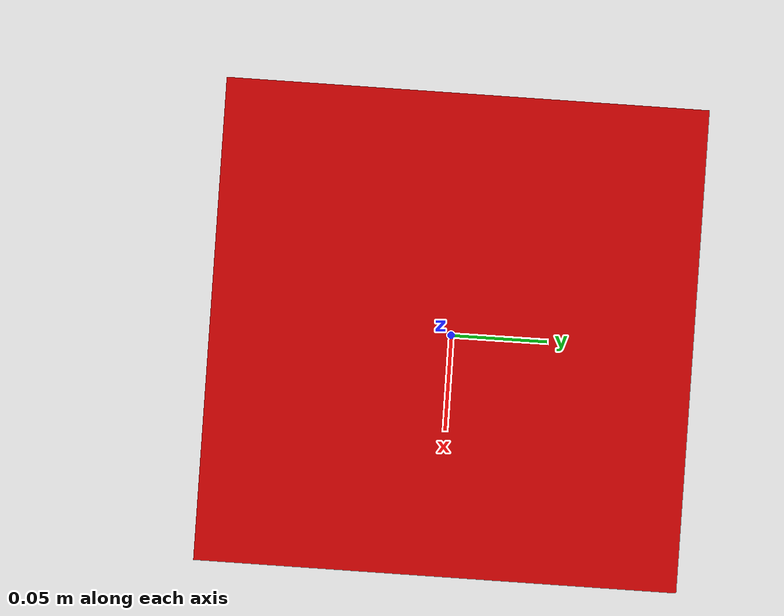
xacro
<?xml version="1.0"?>
<robot name="box_robot" xmlns:xacro="http://ros.org/wiki/xacro">

    <!-- Properties -->
    <!--All units in m-kg-s-radians unit system -->
    <xacro:property name="M_PI" value="3.1415926535897931"/>

    <!-- Colors -->
    <material name="Black">
        <color rgba="0.0 0.0 0.0 1.0"/>
    </material>
    <material name="Red">
        <color rgba="0.8 0.0 0.0 1.0"/>
    </material>
    <material name="White">
        <color rgba="1.0 1.0 1.0 1.0"/>
    </material>
    <material name="Blue">
        <color rgba="0.0 0.0 0.8 1.0"/>
    </material>

    <!-- Box shape -->
    <xacro:property name="box_x"     value="0.2"/>
    <xacro:property name="box_y"     value="0.2"/>
    <xacro:property name="box_z"     value="0.2"/>
    <xacro:property name="box_color" value="Red"/>

    <!-- IMcoder -->
    <!-- Shape -->
    <xacro:property name="imcoder_height" value="0.00545"/>
    <xacro:property name="imcoder_radius" value="0.02"/>
    <xacro:property name="imcoder_color"  value="White"/>

    <!-- Pose (related to center of the box) -->
    <xacro:property name="imcoder_x"     value="0.0"/>
    <xacro:property name="imcoder_y"     value="0.0"/>
    <xacro:property name="imcoder_z"     value="0.0"/>
    <xacro:property name="imcoder_roll"  value="0.0"/>
    <xacro:property name="imcoder_pitch" value="0.0"/>
    <xacro:property name="imcoder_yaw"   value="0.0"/>

    <!-- Data parameters -->
    <xacro:property name="gaussian_noise"     value="0.0"  />
    <!-- Update rates from plugin sensor. -->
    <!-- Note that must be always [sensor_update_rate >= plugin_update_rate] -->
    <xacro:property name="sensor_update_rate" value="100.0"/>
    <xacro:property name="plugin_update_rate" value="10.0"/>

    <!-- Robot description -->
    <!-- Root link -->
    <link name="box_footprint">
        <visual>
            <origin xyz="0 0 0" rpy="0 0 0"/>
            <geometry>
                <box size="0.0001 0.0001 0.0001"/>
            </geometry>
        </visual>
    </link>

    <!-- Joint from box_footprint to box_link -->
    <joint name="box_link_joint" type="fixed">
        <origin xyz="0.0 0.0 0.0" rpy="0 0 0"/>
        <parent link="box_footprint"/>
        <child link="box_link"/>
    </joint>

    <!-- Box model link -->
    <link name="box_link">
        <inertial>
            <mass value="1.0"/>
            <origin xyz="0 0 0"/>
            <inertia ixx="0.0" ixy="0.0"  ixz="0.0"
                               iyy="0.0"  iyz="0.0"
                                          izz="0.0"/>
        </inertial>
        <visual>
            <origin xyz="0 0 0"/>
            <geometry>
                <box size="${box_x} ${box_y} ${box_z}"/>
            </geometry>
            <material name="${box_color}"/>
        </visual>
        <collision>
            <origin xyz="0 0 0"/>
            <geometry>
                <box size="${box_x} ${box_y} ${box_z}"/>
            </geometry>
        </collision>
    </link>

    <!-- Box controller Gazebo plugin -->
    <gazebo>
        <plugin name="object_controller" filename="libgazebo_ros_planar_move.so">
            <commandTopic>imcoders_keyboard_teleop/cmd_vel</commandTopic>
            <odometryTopic>odom</odometryTopic>
            <odometryFrame>odom</odometryFrame>
            <odometryRate>20.0</odometryRate>
            <robotBaseFrame>box_footprint</robotBaseFrame>
        </plugin>
    </gazebo>

    <!-- Joint from box_link to imcoder_link -->
    <joint name="imcoder_joint" type="fixed">
        <origin xyz="${imcoder_x} ${imcoder_y} ${imcoder_z}" rpy="${imcoder_roll} ${imcoder_pitch} ${imcoder_yaw}"/>
        <parent link="box_link"/>
        <child link="imcoder_link"/>
    </joint>

    <!-- IMcoder link -->
    <link name="imcoder_link">
        <visual>
            <origin xyz="0 0 0" rpy="${M_PI/2} 0 0"/>
            <geometry>
                <cylinder length="${imcoder_height}" radius="${imcoder_radius}"/>
            </geometry>
            <material name="${imcoder_color}"/>
        </visual>
    </link>

    <!-- IMcoder controller Gazebo plugin -->
    <gazebo reference="imcoder_link">
        <gravity>true</gravity>
        <sensor name="imcoder_sensor" type="imu">
            <always_on>true</always_on>
            <update_rate>${sensor_update_rate}</update_rate>
            <visualize>true</visualize>
            <topic>__default_topic__</topic>
            <plugin filename="libgazebo_ros_imu_sensor.so" name="imcoder_plugin">
                <topicName>imcoder_data</topicName>
                <bodyName>imcoder_link</bodyName>
                <updateRateHZ>${plugin_update_rate}</updateRateHZ>
                <gaussianNoise>${gaussian_noise}</gaussianNoise>
                <xyzOffset>0 0 0</xyzOffset>
                <rpyOffset>0 0 0</rpyOffset>
                <frameName>imcoder_link</frameName>
            </plugin>
            <pose>0 0 0 0 0 0</pose>
        </sensor>
    </gazebo>

</robot>
